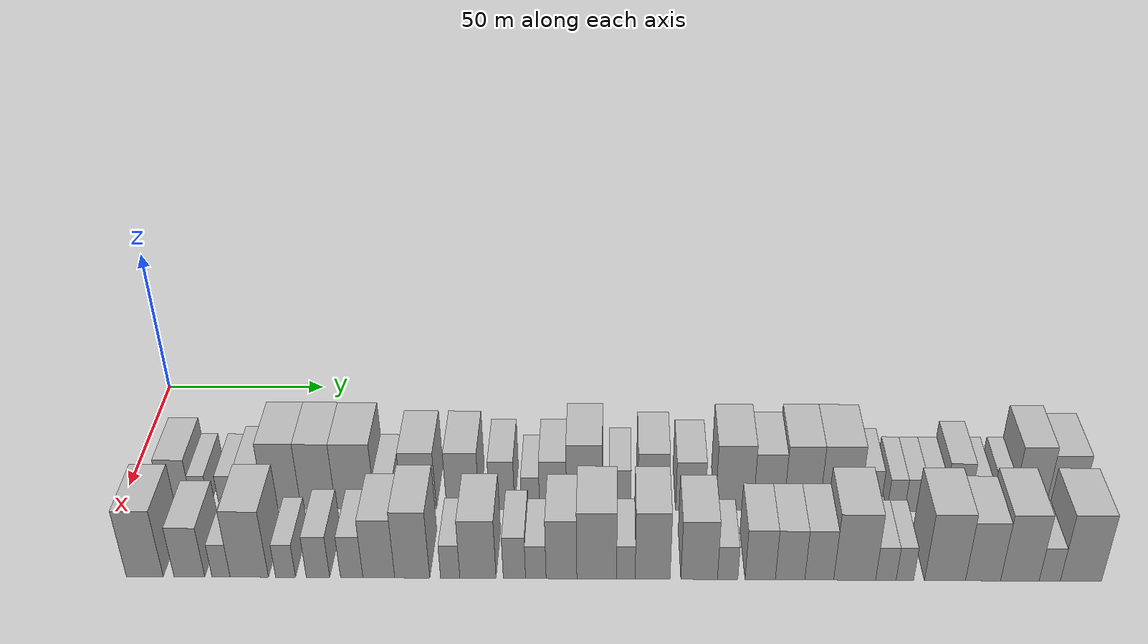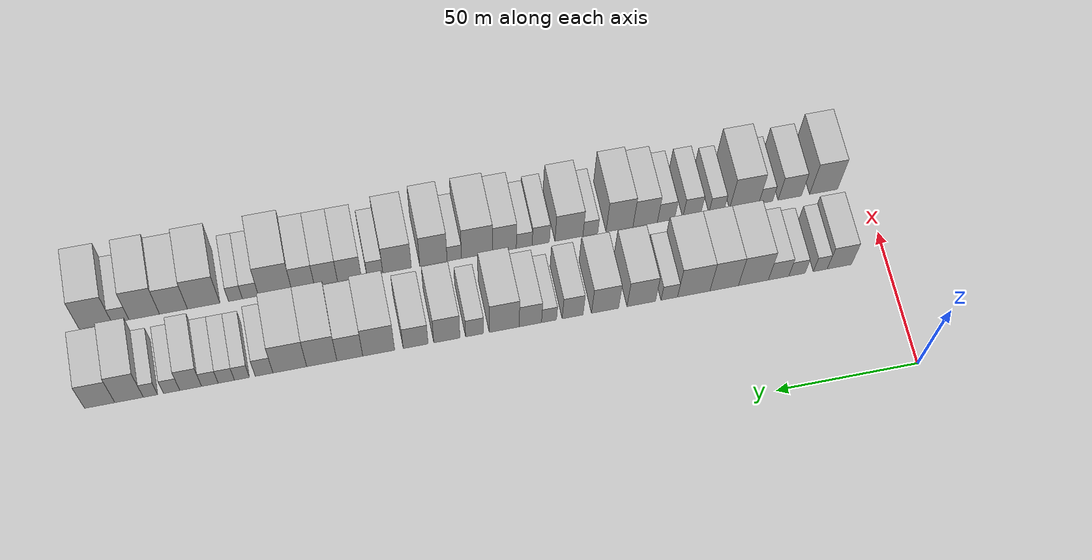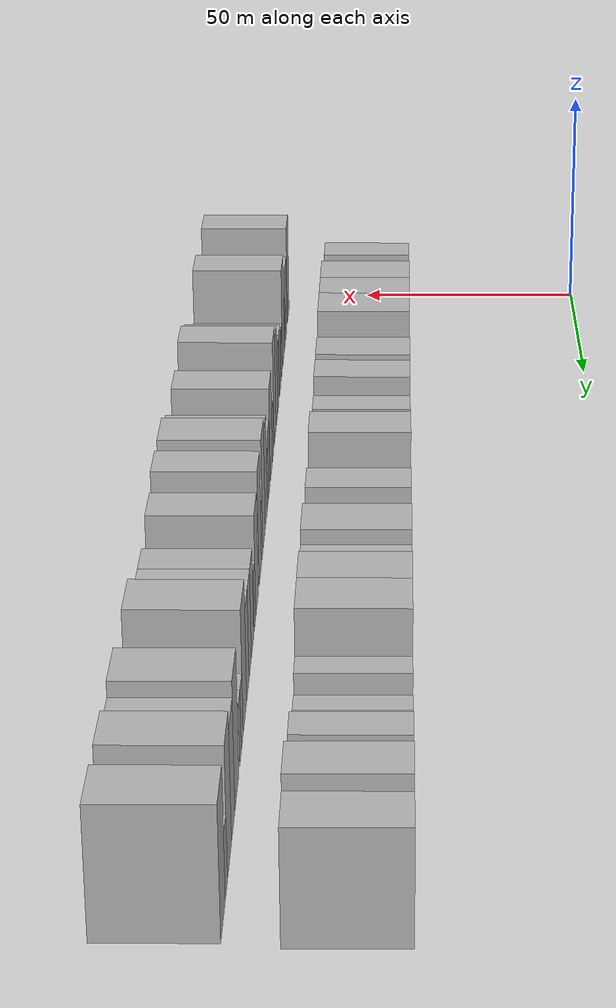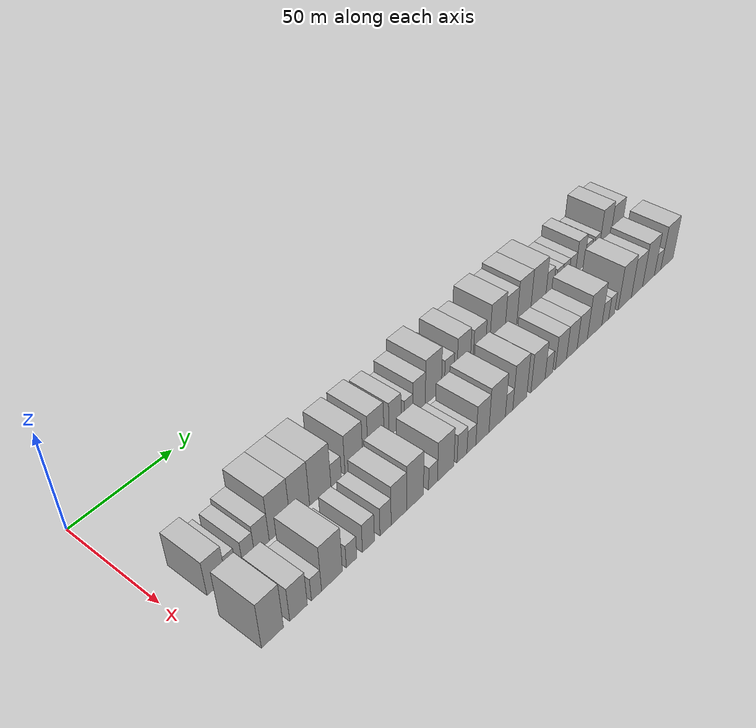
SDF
<sdf version="1.6">
 <world name="default">
  <model name="building_29">
   <static>1</static>
   <pose>50.0000 16.8329 0 0.000000 0.000000 0.000000</pose>
   <link name="link">
    <pose>0 0 9.00 0 0 0</pose>
    <collision name="collision"><geometry><box><size>20.0000 8.8094 18.0000</size></box></geometry></collision>
    <visual name="visual">
     <cast_shadows>0</cast_shadows>
     <geometry><box><size>20.0000 8.8094 18.0000</size></box></geometry>
     <material>
      <script>
       <uri>model://HANNAS_wall/materials/scripts</uri>
       <uri>model://HANNAS_wall/materials/textures</uri>
       <name>vrc/HANNAS_wall</name>
      </script>
     </material>
    </visual>
   </link>
  </model>
  <model name="building_30">
   <static>1</static>
   <pose>50.0000 23.7386 0 0.000000 0.000000 0.000000</pose>
   <link name="link">
    <pose>0 0 6.00 0 0 0</pose>
    <collision name="collision"><geometry><box><size>20.0000 5.0021 12.0000</size></box></geometry></collision>
    <visual name="visual">
     <cast_shadows>0</cast_shadows>
     <geometry><box><size>20.0000 5.0021 12.0000</size></box></geometry>
     <material>
      <script>
       <uri>model://HANNAS_wall/materials/scripts</uri>
       <uri>model://HANNAS_wall/materials/textures</uri>
       <name>vrc/HANNAS_wall</name>
      </script>
     </material>
    </visual>
   </link>
  </model>
  <model name="building_31">
   <static>1</static>
   <pose>50.0000 32.1665 0 0.000000 0.000000 0.000000</pose>
   <link name="link">
    <pose>0 0 6.00 0 0 0</pose>
    <collision name="collision"><geometry><box><size>20.0000 5.8538 12.0000</size></box></geometry></collision>
    <visual name="visual">
     <cast_shadows>0</cast_shadows>
     <geometry><box><size>20.0000 5.8538 12.0000</size></box></geometry>
     <material>
      <script>
       <uri>model://HANNAS_wall/materials/scripts</uri>
       <uri>model://HANNAS_wall/materials/textures</uri>
       <name>vrc/HANNAS_wall</name>
      </script>
     </material>
    </visual>
   </link>
  </model>
  <model name="building_32">
   <static>1</static>
   <pose>50.0000 38.7642 0 0.000000 0.000000 0.000000</pose>
   <link name="link">
    <pose>0 0 7.50 0 0 0</pose>
    <collision name="collision"><geometry><box><size>20.0000 7.3415 15.0000</size></box></geometry></collision>
    <visual name="visual">
     <cast_shadows>0</cast_shadows>
     <geometry><box><size>20.0000 7.3415 15.0000</size></box></geometry>
     <material>
      <script>
       <uri>model://HANNAS_wall/materials/scripts</uri>
       <uri>model://HANNAS_wall/materials/textures</uri>
       <name>vrc/HANNAS_wall</name>
      </script>
     </material>
    </visual>
   </link>
  </model>
  <model name="building_33">
   <static>1</static>
   <pose>50.0000 47.8110 0 0.000000 0.000000 0.000000</pose>
   <link name="link">
    <pose>0 0 12.00 0 0 0</pose>
    <collision name="collision"><geometry><box><size>20.0000 10.7521 24.0000</size></box></geometry></collision>
    <visual name="visual">
     <cast_shadows>0</cast_shadows>
     <geometry><box><size>20.0000 10.7521 24.0000</size></box></geometry>
     <material>
      <script>
       <uri>model://HANNAS_wall/materials/scripts</uri>
       <uri>model://HANNAS_wall/materials/textures</uri>
       <name>vrc/HANNAS_wall</name>
      </script>
     </material>
    </visual>
   </link>
  </model>
  <model name="building_34">
   <static>1</static>
   <pose>50.0000 58.2903 0 0.000000 0.000000 0.000000</pose>
   <link name="link">
    <pose>0 0 12.00 0 0 0</pose>
    <collision name="collision"><geometry><box><size>20.0000 10.2065 24.0000</size></box></geometry></collision>
    <visual name="visual">
     <cast_shadows>0</cast_shadows>
     <geometry><box><size>20.0000 10.2065 24.0000</size></box></geometry>
     <material>
      <script>
       <uri>model://HANNAS_wall/materials/scripts</uri>
       <uri>model://HANNAS_wall/materials/textures</uri>
       <name>vrc/HANNAS_wall</name>
      </script>
     </material>
    </visual>
   </link>
  </model>
  <model name="building_35">
   <static>1</static>
   <pose>50.0000 69.1989 0 0.000000 0.000000 0.000000</pose>
   <link name="link">
    <pose>0 0 12.00 0 0 0</pose>
    <collision name="collision"><geometry><box><size>20.0000 11.6106 24.0000</size></box></geometry></collision>
    <visual name="visual">
     <cast_shadows>0</cast_shadows>
     <geometry><box><size>20.0000 11.6106 24.0000</size></box></geometry>
     <material>
      <script>
       <uri>model://HANNAS_wall/materials/scripts</uri>
       <uri>model://HANNAS_wall/materials/textures</uri>
       <name>vrc/HANNAS_wall</name>
      </script>
     </material>
    </visual>
   </link>
  </model>
  <model name="building_36">
   <static>1</static>
   <pose>50.0000 77.9321 0 0.000000 0.000000 0.000000</pose>
   <link name="link">
    <pose>0 0 6.00 0 0 0</pose>
    <collision name="collision"><geometry><box><size>20.0000 5.8558 12.0000</size></box></geometry></collision>
    <visual name="visual">
     <cast_shadows>0</cast_shadows>
     <geometry><box><size>20.0000 5.8558 12.0000</size></box></geometry>
     <material>
      <script>
       <uri>model://HANNAS_wall/materials/scripts</uri>
       <uri>model://HANNAS_wall/materials/textures</uri>
       <name>vrc/HANNAS_wall</name>
      </script>
     </material>
    </visual>
   </link>
  </model>
  <model name="building_37">
   <static>1</static>
   <pose>50.0000 87.9176 0 0.000000 0.000000 0.000000</pose>
   <link name="link">
    <pose>0 0 10.50 0 0 0</pose>
    <collision name="collision"><geometry><box><size>20.0000 10.1152 21.0000</size></box></geometry></collision>
    <visual name="visual">
     <cast_shadows>0</cast_shadows>
     <geometry><box><size>20.0000 10.1152 21.0000</size></box></geometry>
     <material>
      <script>
       <uri>model://HANNAS_wall/materials/scripts</uri>
       <uri>model://HANNAS_wall/materials/textures</uri>
       <name>vrc/HANNAS_wall</name>
      </script>
     </material>
    </visual>
   </link>
  </model>
  <model name="building_38">
   <static>1</static>
   <pose>50.0000 100.7672 0 0.000000 0.000000 0.000000</pose>
   <link name="link">
    <pose>0 0 10.50 0 0 0</pose>
    <collision name="collision"><geometry><box><size>20.0000 9.5838 21.0000</size></box></geometry></collision>
    <visual name="visual">
     <cast_shadows>0</cast_shadows>
     <geometry><box><size>20.0000 9.5838 21.0000</size></box></geometry>
     <material>
      <script>
       <uri>model://HANNAS_wall/materials/scripts</uri>
       <uri>model://HANNAS_wall/materials/textures</uri>
       <name>vrc/HANNAS_wall</name>
      </script>
     </material>
    </visual>
   </link>
  </model>
  <model name="building_39">
   <static>1</static>
   <pose>50.0000 112.2447 0 0.000000 0.000000 0.000000</pose>
   <link name="link">
    <pose>0 0 9.00 0 0 0</pose>
    <collision name="collision"><geometry><box><size>20.0000 7.3713 18.0000</size></box></geometry></collision>
    <visual name="visual">
     <cast_shadows>0</cast_shadows>
     <geometry><box><size>20.0000 7.3713 18.0000</size></box></geometry>
     <material>
      <script>
       <uri>model://HANNAS_wall/materials/scripts</uri>
       <uri>model://HANNAS_wall/materials/textures</uri>
       <name>vrc/HANNAS_wall</name>
      </script>
     </material>
    </visual>
   </link>
  </model>
  <model name="building_40">
   <static>1</static>
   <pose>50.0000 120.5763 0 0.000000 0.000000 0.000000</pose>
   <link name="link">
    <pose>0 0 6.00 0 0 0</pose>
    <collision name="collision"><geometry><box><size>20.0000 5.2918 12.0000</size></box></geometry></collision>
    <visual name="visual">
     <cast_shadows>0</cast_shadows>
     <geometry><box><size>20.0000 5.2918 12.0000</size></box></geometry>
     <material>
      <script>
       <uri>model://HANNAS_wall/materials/scripts</uri>
       <uri>model://HANNAS_wall/materials/textures</uri>
       <name>vrc/HANNAS_wall</name>
      </script>
     </material>
    </visual>
   </link>
  </model>
  <model name="building_41">
   <static>1</static>
   <pose>50.0000 127.1940 0 0.000000 0.000000 0.000000</pose>
   <link name="link">
    <pose>0 0 9.00 0 0 0</pose>
    <collision name="collision"><geometry><box><size>20.0000 7.9437 18.0000</size></box></geometry></collision>
    <visual name="visual">
     <cast_shadows>0</cast_shadows>
     <geometry><box><size>20.0000 7.9437 18.0000</size></box></geometry>
     <material>
      <script>
       <uri>model://HANNAS_wall/materials/scripts</uri>
       <uri>model://HANNAS_wall/materials/textures</uri>
       <name>vrc/HANNAS_wall</name>
      </script>
     </material>
    </visual>
   </link>
  </model>
  <model name="building_42">
   <static>1</static>
   <pose>50.0000 136.3898 0 0.000000 0.000000 0.000000</pose>
   <link name="link">
    <pose>0 0 12.00 0 0 0</pose>
    <collision name="collision"><geometry><box><size>20.0000 10.4479 24.0000</size></box></geometry></collision>
    <visual name="visual">
     <cast_shadows>0</cast_shadows>
     <geometry><box><size>20.0000 10.4479 24.0000</size></box></geometry>
     <material>
      <script>
       <uri>model://HANNAS_wall/materials/scripts</uri>
       <uri>model://HANNAS_wall/materials/textures</uri>
       <name>vrc/HANNAS_wall</name>
      </script>
     </material>
    </visual>
   </link>
  </model>
  <model name="building_43">
   <static>1</static>
   <pose>50.0000 146.7610 0 0.000000 0.000000 0.000000</pose>
   <link name="link">
    <pose>0 0 7.50 0 0 0</pose>
    <collision name="collision"><geometry><box><size>20.0000 6.2945 15.0000</size></box></geometry></collision>
    <visual name="visual">
     <cast_shadows>0</cast_shadows>
     <geometry><box><size>20.0000 6.2945 15.0000</size></box></geometry>
     <material>
      <script>
       <uri>model://HANNAS_wall/materials/scripts</uri>
       <uri>model://HANNAS_wall/materials/textures</uri>
       <name>vrc/HANNAS_wall</name>
      </script>
     </material>
    </visual>
   </link>
  </model>
  <model name="building_44">
   <static>1</static>
   <pose>50.0000 156.4740 0 0.000000 0.000000 0.000000</pose>
   <link name="link">
    <pose>0 0 10.50 0 0 0</pose>
    <collision name="collision"><geometry><box><size>20.0000 9.1314 21.0000</size></box></geometry></collision>
    <visual name="visual">
     <cast_shadows>0</cast_shadows>
     <geometry><box><size>20.0000 9.1314 21.0000</size></box></geometry>
     <material>
      <script>
       <uri>model://HANNAS_wall/materials/scripts</uri>
       <uri>model://HANNAS_wall/materials/textures</uri>
       <name>vrc/HANNAS_wall</name>
      </script>
     </material>
    </visual>
   </link>
  </model>
  <model name="building_45">
   <static>1</static>
   <pose>50.0000 167.3634 0 0.000000 0.000000 0.000000</pose>
   <link name="link">
    <pose>0 0 9.00 0 0 0</pose>
    <collision name="collision"><geometry><box><size>20.0000 8.6474 18.0000</size></box></geometry></collision>
    <visual name="visual">
     <cast_shadows>0</cast_shadows>
     <geometry><box><size>20.0000 8.6474 18.0000</size></box></geometry>
     <material>
      <script>
       <uri>model://HANNAS_wall/materials/scripts</uri>
       <uri>model://HANNAS_wall/materials/textures</uri>
       <name>vrc/HANNAS_wall</name>
      </script>
     </material>
    </visual>
   </link>
  </model>
  <model name="building_46">
   <static>1</static>
   <pose>50.0000 180.2306 0 0.000000 0.000000 0.000000</pose>
   <link name="link">
    <pose>0 0 12.00 0 0 0</pose>
    <collision name="collision"><geometry><box><size>20.0000 11.0870 24.0000</size></box></geometry></collision>
    <visual name="visual">
     <cast_shadows>0</cast_shadows>
     <geometry><box><size>20.0000 11.0870 24.0000</size></box></geometry>
     <material>
      <script>
       <uri>model://HANNAS_wall/materials/scripts</uri>
       <uri>model://HANNAS_wall/materials/textures</uri>
       <name>vrc/HANNAS_wall</name>
      </script>
     </material>
    </visual>
   </link>
  </model>
  <model name="building_47">
   <static>1</static>
   <pose>50.0000 190.2564 0 0.000000 0.000000 0.000000</pose>
   <link name="link">
    <pose>0 0 10.50 0 0 0</pose>
    <collision name="collision"><geometry><box><size>20.0000 8.9645 21.0000</size></box></geometry></collision>
    <visual name="visual">
     <cast_shadows>0</cast_shadows>
     <geometry><box><size>20.0000 8.9645 21.0000</size></box></geometry>
     <material>
      <script>
       <uri>model://HANNAS_wall/materials/scripts</uri>
       <uri>model://HANNAS_wall/materials/textures</uri>
       <name>vrc/HANNAS_wall</name>
      </script>
     </material>
    </visual>
   </link>
  </model>
  <model name="building_48">
   <static>1</static>
   <pose>50.0000 199.9749 0 0.000000 0.000000 0.000000</pose>
   <link name="link">
    <pose>0 0 12.00 0 0 0</pose>
    <collision name="collision"><geometry><box><size>20.0000 10.4727 24.0000</size></box></geometry></collision>
    <visual name="visual">
     <cast_shadows>0</cast_shadows>
     <geometry><box><size>20.0000 10.4727 24.0000</size></box></geometry>
     <material>
      <script>
       <uri>model://HANNAS_wall/materials/scripts</uri>
       <uri>model://HANNAS_wall/materials/textures</uri>
       <name>vrc/HANNAS_wall</name>
      </script>
     </material>
    </visual>
   </link>
  </model>
  <model name="building_49">
   <static>1</static>
   <pose>50.0000 211.0418 0 0.000000 0.000000 0.000000</pose>
   <link name="link">
    <pose>0 0 12.00 0 0 0</pose>
    <collision name="collision"><geometry><box><size>20.0000 11.6610 24.0000</size></box></geometry></collision>
    <visual name="visual">
     <cast_shadows>0</cast_shadows>
     <geometry><box><size>20.0000 11.6610 24.0000</size></box></geometry>
     <material>
      <script>
       <uri>model://HANNAS_wall/materials/scripts</uri>
       <uri>model://HANNAS_wall/materials/textures</uri>
       <name>vrc/HANNAS_wall</name>
      </script>
     </material>
    </visual>
   </link>
  </model>
  <model name="building_50">
   <static>1</static>
   <pose>50.0000 219.9304 0 0.000000 0.000000 0.000000</pose>
   <link name="link">
    <pose>0 0 7.50 0 0 0</pose>
    <collision name="collision"><geometry><box><size>20.0000 6.1162 15.0000</size></box></geometry></collision>
    <visual name="visual">
     <cast_shadows>0</cast_shadows>
     <geometry><box><size>20.0000 6.1162 15.0000</size></box></geometry>
     <material>
      <script>
       <uri>model://HANNAS_wall/materials/scripts</uri>
       <uri>model://HANNAS_wall/materials/textures</uri>
       <name>vrc/HANNAS_wall</name>
      </script>
     </material>
    </visual>
   </link>
  </model>
  <model name="building_51">
   <static>1</static>
   <pose>50.0000 227.5612 0 0.000000 0.000000 0.000000</pose>
   <link name="link">
    <pose>0 0 6.00 0 0 0</pose>
    <collision name="collision"><geometry><box><size>20.0000 5.1453 12.0000</size></box></geometry></collision>
    <visual name="visual">
     <cast_shadows>0</cast_shadows>
     <geometry><box><size>20.0000 5.1453 12.0000</size></box></geometry>
     <material>
      <script>
       <uri>model://HANNAS_wall/materials/scripts</uri>
       <uri>model://HANNAS_wall/materials/textures</uri>
       <name>vrc/HANNAS_wall</name>
      </script>
     </material>
    </visual>
   </link>
  </model>
  <model name="building_52">
   <static>1</static>
   <pose>50.0000 232.9234 0 0.000000 0.000000 0.000000</pose>
   <link name="link">
    <pose>0 0 6.00 0 0 0</pose>
    <collision name="collision"><geometry><box><size>20.0000 5.5791 12.0000</size></box></geometry></collision>
    <visual name="visual">
     <cast_shadows>0</cast_shadows>
     <geometry><box><size>20.0000 5.5791 12.0000</size></box></geometry>
     <material>
      <script>
       <uri>model://HANNAS_wall/materials/scripts</uri>
       <uri>model://HANNAS_wall/materials/textures</uri>
       <name>vrc/HANNAS_wall</name>
      </script>
     </material>
    </visual>
   </link>
  </model>
  <model name="building_53">
   <static>1</static>
   <pose>50.0000 238.5586 0 0.000000 0.000000 0.000000</pose>
   <link name="link">
    <pose>0 0 6.00 0 0 0</pose>
    <collision name="collision"><geometry><box><size>20.0000 5.6915 12.0000</size></box></geometry></collision>
    <visual name="visual">
     <cast_shadows>0</cast_shadows>
     <geometry><box><size>20.0000 5.6915 12.0000</size></box></geometry>
     <material>
      <script>
       <uri>model://HANNAS_wall/materials/scripts</uri>
       <uri>model://HANNAS_wall/materials/textures</uri>
       <name>vrc/HANNAS_wall</name>
      </script>
     </material>
    </visual>
   </link>
  </model>
  <model name="building_54">
   <static>1</static>
   <pose>50.0000 245.1342 0 0.000000 0.000000 0.000000</pose>
   <link name="link">
    <pose>0 0 9.00 0 0 0</pose>
    <collision name="collision"><geometry><box><size>20.0000 7.4597 18.0000</size></box></geometry></collision>
    <visual name="visual">
     <cast_shadows>0</cast_shadows>
     <geometry><box><size>20.0000 7.4597 18.0000</size></box></geometry>
     <material>
      <script>
       <uri>model://HANNAS_wall/materials/scripts</uri>
       <uri>model://HANNAS_wall/materials/textures</uri>
       <name>vrc/HANNAS_wall</name>
      </script>
     </material>
    </visual>
   </link>
  </model>
  <model name="building_55">
   <static>1</static>
   <pose>50.0000 251.6517 0 0.000000 0.000000 0.000000</pose>
   <link name="link">
    <pose>0 0 6.00 0 0 0</pose>
    <collision name="collision"><geometry><box><size>20.0000 5.5754 12.0000</size></box></geometry></collision>
    <visual name="visual">
     <cast_shadows>0</cast_shadows>
     <geometry><box><size>20.0000 5.5754 12.0000</size></box></geometry>
     <material>
      <script>
       <uri>model://HANNAS_wall/materials/scripts</uri>
       <uri>model://HANNAS_wall/materials/textures</uri>
       <name>vrc/HANNAS_wall</name>
      </script>
     </material>
    </visual>
   </link>
  </model>
  <model name="building_56">
   <static>1</static>
   <pose>50.0000 258.8911 0 0.000000 0.000000 0.000000</pose>
   <link name="link">
    <pose>0 0 6.00 0 0 0</pose>
    <collision name="collision"><geometry><box><size>20.0000 4.9034 12.0000</size></box></geometry></collision>
    <visual name="visual">
     <cast_shadows>0</cast_shadows>
     <geometry><box><size>20.0000 4.9034 12.0000</size></box></geometry>
     <material>
      <script>
       <uri>model://HANNAS_wall/materials/scripts</uri>
       <uri>model://HANNAS_wall/materials/textures</uri>
       <name>vrc/HANNAS_wall</name>
      </script>
     </material>
    </visual>
   </link>
  </model>
  <model name="building_57">
   <static>1</static>
   <pose>50.0000 266.1980 0 0.000000 0.000000 0.000000</pose>
   <link name="link">
    <pose>0 0 12.00 0 0 0</pose>
    <collision name="collision"><geometry><box><size>20.0000 9.7103 24.0000</size></box></geometry></collision>
    <visual name="visual">
     <cast_shadows>0</cast_shadows>
     <geometry><box><size>20.0000 9.7103 24.0000</size></box></geometry>
     <material>
      <script>
       <uri>model://HANNAS_wall/materials/scripts</uri>
       <uri>model://HANNAS_wall/materials/textures</uri>
       <name>vrc/HANNAS_wall</name>
      </script>
     </material>
    </visual>
   </link>
  </model>
  <model name="building_58">
   <static>1</static>
   <pose>50.0000 276.2072 0 0.000000 0.000000 0.000000</pose>
   <link name="link">
    <pose>0 0 10.50 0 0 0</pose>
    <collision name="collision"><geometry><box><size>20.0000 10.3082 21.0000</size></box></geometry></collision>
    <visual name="visual">
     <cast_shadows>0</cast_shadows>
     <geometry><box><size>20.0000 10.3082 21.0000</size></box></geometry>
     <material>
      <script>
       <uri>model://HANNAS_wall/materials/scripts</uri>
       <uri>model://HANNAS_wall/materials/textures</uri>
       <name>vrc/HANNAS_wall</name>
      </script>
     </material>
    </visual>
   </link>
  </model>
  <model name="building_91">
   <static>1</static>
   <pose>79.0000 14.6517 0 0.000000 0.000000 0.000000</pose>
   <link name="link">
    <pose>0 0 12.00 0 0 0</pose>
    <collision name="collision"><geometry><box><size>20.0000 10.2664 24.0000</size></box></geometry></collision>
    <visual name="visual">
     <cast_shadows>0</cast_shadows>
     <geometry><box><size>20.0000 10.2664 24.0000</size></box></geometry>
     <material>
      <script>
       <uri>model://HANNAS_wall/materials/scripts</uri>
       <uri>model://HANNAS_wall/materials/textures</uri>
       <name>vrc/HANNAS_wall</name>
      </script>
     </material>
    </visual>
   </link>
  </model>
  <model name="building_92">
   <static>1</static>
   <pose>79.0000 27.0608 0 0.000000 0.000000 0.000000</pose>
   <link name="link">
    <pose>0 0 9.00 0 0 0</pose>
    <collision name="collision"><geometry><box><size>20.0000 8.5518 18.0000</size></box></geometry></collision>
    <visual name="visual">
     <cast_shadows>0</cast_shadows>
     <geometry><box><size>20.0000 8.5518 18.0000</size></box></geometry>
     <material>
      <script>
       <uri>model://HANNAS_wall/materials/scripts</uri>
       <uri>model://HANNAS_wall/materials/textures</uri>
       <name>vrc/HANNAS_wall</name>
      </script>
     </material>
    </visual>
   </link>
  </model>
  <model name="building_93">
   <static>1</static>
   <pose>79.0000 35.8652 0 0.000000 0.000000 0.000000</pose>
   <link name="link">
    <pose>0 0 6.00 0 0 0</pose>
    <collision name="collision"><geometry><box><size>20.0000 5.0569 12.0000</size></box></geometry></collision>
    <visual name="visual">
     <cast_shadows>0</cast_shadows>
     <geometry><box><size>20.0000 5.0569 12.0000</size></box></geometry>
     <material>
      <script>
       <uri>model://HANNAS_wall/materials/scripts</uri>
       <uri>model://HANNAS_wall/materials/textures</uri>
       <name>vrc/HANNAS_wall</name>
      </script>
     </material>
    </visual>
   </link>
  </model>
  <model name="building_94">
   <static>1</static>
   <pose>79.0000 43.7217 0 0.000000 0.000000 0.000000</pose>
   <link name="link">
    <pose>0 0 12.00 0 0 0</pose>
    <collision name="collision"><geometry><box><size>20.0000 10.6561 24.0000</size></box></geometry></collision>
    <visual name="visual">
     <cast_shadows>0</cast_shadows>
     <geometry><box><size>20.0000 10.6561 24.0000</size></box></geometry>
     <material>
      <script>
       <uri>model://HANNAS_wall/materials/scripts</uri>
       <uri>model://HANNAS_wall/materials/textures</uri>
       <name>vrc/HANNAS_wall</name>
      </script>
     </material>
    </visual>
   </link>
  </model>
  <model name="building_95">
   <static>1</static>
   <pose>79.0000 53.8186 0 0.000000 0.000000 0.000000</pose>
   <link name="link">
    <pose>0 0 6.00 0 0 0</pose>
    <collision name="collision"><geometry><box><size>20.0000 5.5377 12.0000</size></box></geometry></collision>
    <visual name="visual">
     <cast_shadows>0</cast_shadows>
     <geometry><box><size>20.0000 5.5377 12.0000</size></box></geometry>
     <material>
      <script>
       <uri>model://HANNAS_wall/materials/scripts</uri>
       <uri>model://HANNAS_wall/materials/textures</uri>
       <name>vrc/HANNAS_wall</name>
      </script>
     </material>
    </visual>
   </link>
  </model>
  <model name="building_96">
   <static>1</static>
   <pose>79.0000 62.8398 0 0.000000 0.000000 0.000000</pose>
   <link name="link">
    <pose>0 0 7.50 0 0 0</pose>
    <collision name="collision"><geometry><box><size>20.0000 6.5047 15.0000</size></box></geometry></collision>
    <visual name="visual">
     <cast_shadows>0</cast_shadows>
     <geometry><box><size>20.0000 6.5047 15.0000</size></box></geometry>
     <material>
      <script>
       <uri>model://HANNAS_wall/materials/scripts</uri>
       <uri>model://HANNAS_wall/materials/textures</uri>
       <name>vrc/HANNAS_wall</name>
      </script>
     </material>
    </visual>
   </link>
  </model>
  <model name="building_97">
   <static>1</static>
   <pose>79.0000 72.1973 0 0.000000 0.000000 0.000000</pose>
   <link name="link">
    <pose>0 0 7.50 0 0 0</pose>
    <collision name="collision"><geometry><box><size>20.0000 6.2102 15.0000</size></box></geometry></collision>
    <visual name="visual">
     <cast_shadows>0</cast_shadows>
     <geometry><box><size>20.0000 6.2102 15.0000</size></box></geometry>
     <material>
      <script>
       <uri>model://HANNAS_wall/materials/scripts</uri>
       <uri>model://HANNAS_wall/materials/textures</uri>
       <name>vrc/HANNAS_wall</name>
      </script>
     </material>
    </visual>
   </link>
  </model>
  <model name="building_98">
   <static>1</static>
   <pose>79.0000 79.7293 0 0.000000 0.000000 0.000000</pose>
   <link name="link">
    <pose>0 0 10.50 0 0 0</pose>
    <collision name="collision"><geometry><box><size>20.0000 8.8536 21.0000</size></box></geometry></collision>
    <visual name="visual">
     <cast_shadows>0</cast_shadows>
     <geometry><box><size>20.0000 8.8536 21.0000</size></box></geometry>
     <material>
      <script>
       <uri>model://HANNAS_wall/materials/scripts</uri>
       <uri>model://HANNAS_wall/materials/textures</uri>
       <name>vrc/HANNAS_wall</name>
      </script>
     </material>
    </visual>
   </link>
  </model>
  <model name="building_99">
   <static>1</static>
   <pose>79.0000 89.0230 0 0.000000 0.000000 0.000000</pose>
   <link name="link">
    <pose>0 0 12.00 0 0 0</pose>
    <collision name="collision"><geometry><box><size>20.0000 9.7339 24.0000</size></box></geometry></collision>
    <visual name="visual">
     <cast_shadows>0</cast_shadows>
     <geometry><box><size>20.0000 9.7339 24.0000</size></box></geometry>
     <material>
      <script>
       <uri>model://HANNAS_wall/materials/scripts</uri>
       <uri>model://HANNAS_wall/materials/textures</uri>
       <name>vrc/HANNAS_wall</name>
      </script>
     </material>
    </visual>
   </link>
  </model>
  <model name="building_100">
   <static>1</static>
   <pose>79.0000 99.5625 0 0.000000 0.000000 0.000000</pose>
   <link name="link">
    <pose>0 0 6.00 0 0 0</pose>
    <collision name="collision"><geometry><box><size>20.0000 5.3451 12.0000</size></box></geometry></collision>
    <visual name="visual">
     <cast_shadows>0</cast_shadows>
     <geometry><box><size>20.0000 5.3451 12.0000</size></box></geometry>
     <material>
      <script>
       <uri>model://HANNAS_wall/materials/scripts</uri>
       <uri>model://HANNAS_wall/materials/textures</uri>
       <name>vrc/HANNAS_wall</name>
      </script>
     </material>
    </visual>
   </link>
  </model>
  <model name="building_101">
   <static>1</static>
   <pose>79.0000 107.2636 0 0.000000 0.000000 0.000000</pose>
   <link name="link">
    <pose>0 0 10.50 0 0 0</pose>
    <collision name="collision"><geometry><box><size>20.0000 10.0570 21.0000</size></box></geometry></collision>
    <visual name="visual">
     <cast_shadows>0</cast_shadows>
     <geometry><box><size>20.0000 10.0570 21.0000</size></box></geometry>
     <material>
      <script>
       <uri>model://HANNAS_wall/materials/scripts</uri>
       <uri>model://HANNAS_wall/materials/textures</uri>
       <name>vrc/HANNAS_wall</name>
      </script>
     </material>
    </visual>
   </link>
  </model>
  <model name="building_102">
   <static>1</static>
   <pose>79.0000 117.3871 0 0.000000 0.000000 0.000000</pose>
   <link name="link">
    <pose>0 0 7.50 0 0 0</pose>
    <collision name="collision"><geometry><box><size>20.0000 6.1901 15.0000</size></box></geometry></collision>
    <visual name="visual">
     <cast_shadows>0</cast_shadows>
     <geometry><box><size>20.0000 6.1901 15.0000</size></box></geometry>
     <material>
      <script>
       <uri>model://HANNAS_wall/materials/scripts</uri>
       <uri>model://HANNAS_wall/materials/textures</uri>
       <name>vrc/HANNAS_wall</name>
      </script>
     </material>
    </visual>
   </link>
  </model>
  <model name="building_103">
   <static>1</static>
   <pose>79.0000 123.3277 0 0.000000 0.000000 0.000000</pose>
   <link name="link">
    <pose>0 0 6.00 0 0 0</pose>
    <collision name="collision"><geometry><box><size>20.0000 5.6911 12.0000</size></box></geometry></collision>
    <visual name="visual">
     <cast_shadows>0</cast_shadows>
     <geometry><box><size>20.0000 5.6911 12.0000</size></box></geometry>
     <material>
      <script>
       <uri>model://HANNAS_wall/materials/scripts</uri>
       <uri>model://HANNAS_wall/materials/textures</uri>
       <name>vrc/HANNAS_wall</name>
      </script>
     </material>
    </visual>
   </link>
  </model>
  <model name="building_104">
   <static>1</static>
   <pose>79.0000 130.4423 0 0.000000 0.000000 0.000000</pose>
   <link name="link">
    <pose>0 0 10.50 0 0 0</pose>
    <collision name="collision"><geometry><box><size>20.0000 8.5381 21.0000</size></box></geometry></collision>
    <visual name="visual">
     <cast_shadows>0</cast_shadows>
     <geometry><box><size>20.0000 8.5381 21.0000</size></box></geometry>
     <material>
      <script>
       <uri>model://HANNAS_wall/materials/scripts</uri>
       <uri>model://HANNAS_wall/materials/textures</uri>
       <name>vrc/HANNAS_wall</name>
      </script>
     </material>
    </visual>
   </link>
  </model>
  <model name="building_105">
   <static>1</static>
   <pose>79.0000 140.2159 0 0.000000 0.000000 0.000000</pose>
   <link name="link">
    <pose>0 0 12.00 0 0 0</pose>
    <collision name="collision"><geometry><box><size>20.0000 11.0091 24.0000</size></box></geometry></collision>
    <visual name="visual">
     <cast_shadows>0</cast_shadows>
     <geometry><box><size>20.0000 11.0091 24.0000</size></box></geometry>
     <material>
      <script>
       <uri>model://HANNAS_wall/materials/scripts</uri>
       <uri>model://HANNAS_wall/materials/textures</uri>
       <name>vrc/HANNAS_wall</name>
      </script>
     </material>
    </visual>
   </link>
  </model>
  <model name="building_106">
   <static>1</static>
   <pose>79.0000 148.2861 0 0.000000 0.000000 0.000000</pose>
   <link name="link">
    <pose>0 0 6.00 0 0 0</pose>
    <collision name="collision"><geometry><box><size>20.0000 5.1314 12.0000</size></box></geometry></collision>
    <visual name="visual">
     <cast_shadows>0</cast_shadows>
     <geometry><box><size>20.0000 5.1314 12.0000</size></box></geometry>
     <material>
      <script>
       <uri>model://HANNAS_wall/materials/scripts</uri>
       <uri>model://HANNAS_wall/materials/textures</uri>
       <name>vrc/HANNAS_wall</name>
      </script>
     </material>
    </visual>
   </link>
  </model>
  <model name="building_107">
   <static>1</static>
   <pose>79.0000 155.6988 0 0.000000 0.000000 0.000000</pose>
   <link name="link">
    <pose>0 0 12.00 0 0 0</pose>
    <collision name="collision"><geometry><box><size>20.0000 9.6939 24.0000</size></box></geometry></collision>
    <visual name="visual">
     <cast_shadows>0</cast_shadows>
     <geometry><box><size>20.0000 9.6939 24.0000</size></box></geometry>
     <material>
      <script>
       <uri>model://HANNAS_wall/materials/scripts</uri>
       <uri>model://HANNAS_wall/materials/textures</uri>
       <name>vrc/HANNAS_wall</name>
      </script>
     </material>
    </visual>
   </link>
  </model>
  <model name="building_108">
   <static>1</static>
   <pose>79.0000 168.6106 0 0.000000 0.000000 0.000000</pose>
   <link name="link">
    <pose>0 0 10.50 0 0 0</pose>
    <collision name="collision"><geometry><box><size>20.0000 10.1297 21.0000</size></box></geometry></collision>
    <visual name="visual">
     <cast_shadows>0</cast_shadows>
     <geometry><box><size>20.0000 10.1297 21.0000</size></box></geometry>
     <material>
      <script>
       <uri>model://HANNAS_wall/materials/scripts</uri>
       <uri>model://HANNAS_wall/materials/textures</uri>
       <name>vrc/HANNAS_wall</name>
      </script>
     </material>
    </visual>
   </link>
  </model>
  <model name="building_109">
   <static>1</static>
   <pose>79.0000 176.4988 0 0.000000 0.000000 0.000000</pose>
   <link name="link">
    <pose>0 0 6.00 0 0 0</pose>
    <collision name="collision"><geometry><box><size>20.0000 5.6468 12.0000</size></box></geometry></collision>
    <visual name="visual">
     <cast_shadows>0</cast_shadows>
     <geometry><box><size>20.0000 5.6468 12.0000</size></box></geometry>
     <material>
      <script>
       <uri>model://HANNAS_wall/materials/scripts</uri>
       <uri>model://HANNAS_wall/materials/textures</uri>
       <name>vrc/HANNAS_wall</name>
      </script>
     </material>
    </visual>
   </link>
  </model>
  <model name="building_110">
   <static>1</static>
   <pose>79.0000 185.5167 0 0.000000 0.000000 0.000000</pose>
   <link name="link">
    <pose>0 0 9.00 0 0 0</pose>
    <collision name="collision"><geometry><box><size>20.0000 8.3890 18.0000</size></box></geometry></collision>
    <visual name="visual">
     <cast_shadows>0</cast_shadows>
     <geometry><box><size>20.0000 8.3890 18.0000</size></box></geometry>
     <material>
      <script>
       <uri>model://HANNAS_wall/materials/scripts</uri>
       <uri>model://HANNAS_wall/materials/textures</uri>
       <name>vrc/HANNAS_wall</name>
      </script>
     </material>
    </visual>
   </link>
  </model>
  <model name="building_111">
   <static>1</static>
   <pose>79.0000 193.7927 0 0.000000 0.000000 0.000000</pose>
   <link name="link">
    <pose>0 0 9.00 0 0 0</pose>
    <collision name="collision"><geometry><box><size>20.0000 8.1629 18.0000</size></box></geometry></collision>
    <visual name="visual">
     <cast_shadows>0</cast_shadows>
     <geometry><box><size>20.0000 8.1629 18.0000</size></box></geometry>
     <material>
      <script>
       <uri>model://HANNAS_wall/materials/scripts</uri>
       <uri>model://HANNAS_wall/materials/textures</uri>
       <name>vrc/HANNAS_wall</name>
      </script>
     </material>
    </visual>
   </link>
  </model>
  <model name="building_112">
   <static>1</static>
   <pose>79.0000 201.8754 0 0.000000 0.000000 0.000000</pose>
   <link name="link">
    <pose>0 0 9.00 0 0 0</pose>
    <collision name="collision"><geometry><box><size>20.0000 8.0024 18.0000</size></box></geometry></collision>
    <visual name="visual">
     <cast_shadows>0</cast_shadows>
     <geometry><box><size>20.0000 8.0024 18.0000</size></box></geometry>
     <material>
      <script>
       <uri>model://HANNAS_wall/materials/scripts</uri>
       <uri>model://HANNAS_wall/materials/textures</uri>
       <name>vrc/HANNAS_wall</name>
      </script>
     </material>
    </visual>
   </link>
  </model>
  <model name="building_113">
   <static>1</static>
   <pose>79.0000 211.6847 0 0.000000 0.000000 0.000000</pose>
   <link name="link">
    <pose>0 0 12.00 0 0 0</pose>
    <collision name="collision"><geometry><box><size>20.0000 11.6162 24.0000</size></box></geometry></collision>
    <visual name="visual">
     <cast_shadows>0</cast_shadows>
     <geometry><box><size>20.0000 11.6162 24.0000</size></box></geometry>
     <material>
      <script>
       <uri>model://HANNAS_wall/materials/scripts</uri>
       <uri>model://HANNAS_wall/materials/textures</uri>
       <name>vrc/HANNAS_wall</name>
      </script>
     </material>
    </visual>
   </link>
  </model>
  <model name="building_114">
   <static>1</static>
   <pose>79.0000 220.3244 0 0.000000 0.000000 0.000000</pose>
   <link name="link">
    <pose>0 0 6.00 0 0 0</pose>
    <collision name="collision"><geometry><box><size>20.0000 5.6634 12.0000</size></box></geometry></collision>
    <visual name="visual">
     <cast_shadows>0</cast_shadows>
     <geometry><box><size>20.0000 5.6634 12.0000</size></box></geometry>
     <material>
      <script>
       <uri>model://HANNAS_wall/materials/scripts</uri>
       <uri>model://HANNAS_wall/materials/textures</uri>
       <name>vrc/HANNAS_wall</name>
      </script>
     </material>
    </visual>
   </link>
  </model>
  <model name="building_115">
   <static>1</static>
   <pose>79.0000 225.5826 0 0.000000 0.000000 0.000000</pose>
   <link name="link">
    <pose>0 0 6.00 0 0 0</pose>
    <collision name="collision"><geometry><box><size>20.0000 4.8529 12.0000</size></box></geometry></collision>
    <visual name="visual">
     <cast_shadows>0</cast_shadows>
     <geometry><box><size>20.0000 4.8529 12.0000</size></box></geometry>
     <material>
      <script>
       <uri>model://HANNAS_wall/materials/scripts</uri>
       <uri>model://HANNAS_wall/materials/textures</uri>
       <name>vrc/HANNAS_wall</name>
      </script>
     </material>
    </visual>
   </link>
  </model>
  <model name="building_116">
   <static>1</static>
   <pose>79.0000 236.6717 0 0.000000 0.000000 0.000000</pose>
   <link name="link">
    <pose>0 0 12.00 0 0 0</pose>
    <collision name="collision"><geometry><box><size>20.0000 11.3252 24.0000</size></box></geometry></collision>
    <visual name="visual">
     <cast_shadows>0</cast_shadows>
     <geometry><box><size>20.0000 11.3252 24.0000</size></box></geometry>
     <material>
      <script>
       <uri>model://HANNAS_wall/materials/scripts</uri>
       <uri>model://HANNAS_wall/materials/textures</uri>
       <name>vrc/HANNAS_wall</name>
      </script>
     </material>
    </visual>
   </link>
  </model>
  <model name="building_117">
   <static>1</static>
   <pose>79.0000 247.1990 0 0.000000 0.000000 0.000000</pose>
   <link name="link">
    <pose>0 0 10.50 0 0 0</pose>
    <collision name="collision"><geometry><box><size>20.0000 9.7294 21.0000</size></box></geometry></collision>
    <visual name="visual">
     <cast_shadows>0</cast_shadows>
     <geometry><box><size>20.0000 9.7294 21.0000</size></box></geometry>
     <material>
      <script>
       <uri>model://HANNAS_wall/materials/scripts</uri>
       <uri>model://HANNAS_wall/materials/textures</uri>
       <name>vrc/HANNAS_wall</name>
      </script>
     </material>
    </visual>
   </link>
  </model>
  <model name="building_118">
   <static>1</static>
   <pose>79.0000 257.3883 0 0.000000 0.000000 0.000000</pose>
   <link name="link">
    <pose>0 0 12.00 0 0 0</pose>
    <collision name="collision"><geometry><box><size>20.0000 10.6492 24.0000</size></box></geometry></collision>
    <visual name="visual">
     <cast_shadows>0</cast_shadows>
     <geometry><box><size>20.0000 10.6492 24.0000</size></box></geometry>
     <material>
      <script>
       <uri>model://HANNAS_wall/materials/scripts</uri>
       <uri>model://HANNAS_wall/materials/textures</uri>
       <name>vrc/HANNAS_wall</name>
      </script>
     </material>
    </visual>
   </link>
  </model>
  <model name="building_119">
   <static>1</static>
   <pose>79.0000 265.6427 0 0.000000 0.000000 0.000000</pose>
   <link name="link">
    <pose>0 0 6.00 0 0 0</pose>
    <collision name="collision"><geometry><box><size>20.0000 5.8596 12.0000</size></box></geometry></collision>
    <visual name="visual">
     <cast_shadows>0</cast_shadows>
     <geometry><box><size>20.0000 5.8596 12.0000</size></box></geometry>
     <material>
      <script>
       <uri>model://HANNAS_wall/materials/scripts</uri>
       <uri>model://HANNAS_wall/materials/textures</uri>
       <name>vrc/HANNAS_wall</name>
      </script>
     </material>
    </visual>
   </link>
  </model>
  <model name="building_120">
   <static>1</static>
   <pose>79.0000 274.2634 0 0.000000 0.000000 0.000000</pose>
   <link name="link">
    <pose>0 0 12.00 0 0 0</pose>
    <collision name="collision"><geometry><box><size>20.0000 11.3816 24.0000</size></box></geometry></collision>
    <visual name="visual">
     <cast_shadows>0</cast_shadows>
     <geometry><box><size>20.0000 11.3816 24.0000</size></box></geometry>
     <material>
      <script>
       <uri>model://HANNAS_wall/materials/scripts</uri>
       <uri>model://HANNAS_wall/materials/textures</uri>
       <name>vrc/HANNAS_wall</name>
      </script>
     </material>
    </visual>
   </link>
  </model>
 </world>
</sdf>
